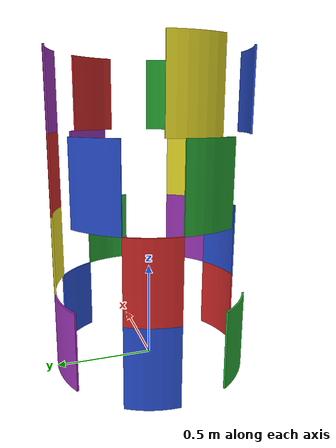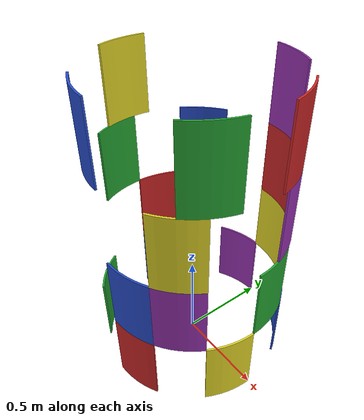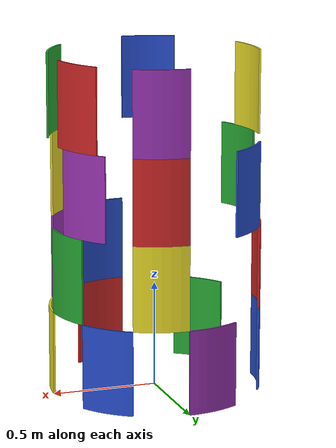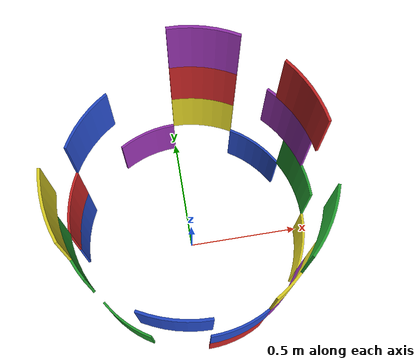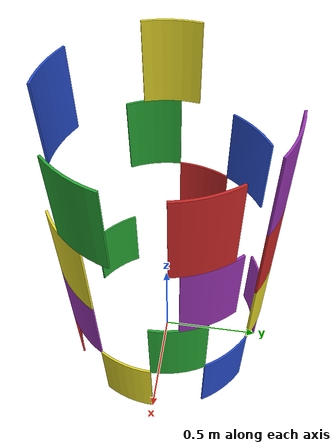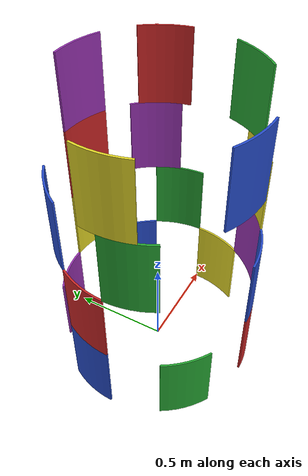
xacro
<?xml version="1.0" encoding="utf-8"?>

<robot name="cy_lin_rot" xmlns:xacro="http://www.ros.org/wiki/xacro">

  <xacro:macro name="cy_stack" params="yaw level id connectedTo color">

    <link name="l0_${id}">
      <inertial>
        <origin
          xyz="-0.47271 0.2 -0.12666"
          rpy="0 0 0" />
        <mass
          value="8.1901" />
        <inertia
          ixx="0.15142"
          ixy="3.11E-16"
          ixz="0.011238"
          iyy="0.045502"
          iyz="1.1913E-16"
          izz="0.11249" />
      </inertial>
      <visual>
        <origin
        xyz="0 0 0"
        rpy="0 0 0" />
        <geometry>
        <mesh
        filename="package://viman_visualize/meshes/cy_stack_part.STL" />
        </geometry>
      </visual>
      <collision>
        <origin
        xyz="0 0 0"
        rpy="0 0 0" />
        <geometry>
        <mesh
        filename="package://viman_visualize/meshes/cy_stack_part.STL" />
        </geometry>
      </collision>
    </link>

    <joint name="l0_${id}_jnt" type="fixed">
      <parent link="l0_${connectedTo}"/>
      <child link="l0_${id}"/>
      <origin rpy="0 0 ${yaw}" xyz="0 0 ${level*0.4}"/>
    </joint>

    <gazebo reference="l0_${id}">
      <material>Gazebo/${color}</material>
    </gazebo>

  </xacro:macro>

  <link name="l0_1">
    <inertial>
      <origin
        xyz="-0.47271 0.2 -0.12666"
        rpy="0 0 0" />
      <mass
        value="8.1901" />
      <inertia
        ixx="0.15142"
        ixy="3.11E-16"
        ixz="0.011238"
        iyy="0.045502"
        iyz="1.1913E-16"
        izz="0.11249" />
    </inertial>
    <visual>
      <origin
        xyz="0 0 0"
        rpy="0 0 0" />
      <geometry>
        <mesh filename="package://viman_visualize/meshes/cy_stack_part.STL" />
      </geometry>
    </visual>
    <collision>
      <origin
        xyz="0 0 0"
        rpy="0 0 0" />
      <geometry>
        <mesh
          filename="package://viman_visualize/meshes/cy_stack_part.STL" />
      </geometry>
    </collision>
  </link>

  <gazebo reference="l0_1">
    <material>Gazebo/Blue</material>
  </gazebo>

  <!-- Level 0 -->
  <xacro:cy_stack yaw="${radians(60)}" level="0" color="Green" id="a" connectedTo="1"/>
  <xacro:cy_stack yaw="${radians(60)}" level="0" color="Red" id="b" connectedTo="a"/>
  <xacro:cy_stack yaw="${radians(60)}" level="0" color="Yellow" id="c" connectedTo="b"/>
  <xacro:cy_stack yaw="${radians(60)}" level="0" color="Blue" id="d" connectedTo="c"/>
  <xacro:cy_stack yaw="${radians(60)}" level="0" color="Purple" id="e" connectedTo="d"/>

  <!-- Level 1 -->
  <xacro:cy_stack yaw="0" level="1" color="Red" id="f" connectedTo="1"/>
  <xacro:cy_stack yaw="0" level="1" color="Blue" id="g" connectedTo="b"/>
  <xacro:cy_stack yaw="${radians(-30)}" level="1" color="Yellow" id="h" connectedTo="e"/>
  <xacro:cy_stack yaw="${radians(-30)}" level="1" color="Green" id="i" connectedTo="d"/>
  <xacro:cy_stack yaw="${radians(-30)}" level="1" color="Purple" id="j" connectedTo="c"/>

  <!-- Level 2 -->
  <xacro:cy_stack yaw="${radians(30)}" level="2" color="Green" id="k" connectedTo="1"/>
  <xacro:cy_stack yaw="${radians(30)}" level="2" color="Yellow" id="l" connectedTo="b"/>
  <xacro:cy_stack yaw="${radians(45)}" level="2" color="Purple" id="m" connectedTo="c"/>
  <xacro:cy_stack yaw="${radians(30)}" level="2" color="Red" id="n" connectedTo="d"/>
  <xacro:cy_stack yaw="${radians(30)}" level="2" color="Blue" id="o" connectedTo="e"/>

  <!-- Level 3 -->
  <xacro:cy_stack yaw="${radians(20)}" level="3" color="Yellow" id="p" connectedTo="1"/>
  <xacro:cy_stack yaw="${radians(30)}" level="3" color="Blue" id="q" connectedTo="a"/>
  <xacro:cy_stack yaw="${radians(45)}" level="3" color="Green" id="r" connectedTo="b"/>
  <xacro:cy_stack yaw="${radians(40)}" level="3" color="Red" id="s" connectedTo="c"/>
  <xacro:cy_stack yaw="${radians(30)}" level="3" color="Purple" id="t" connectedTo="d"/>

</robot>
